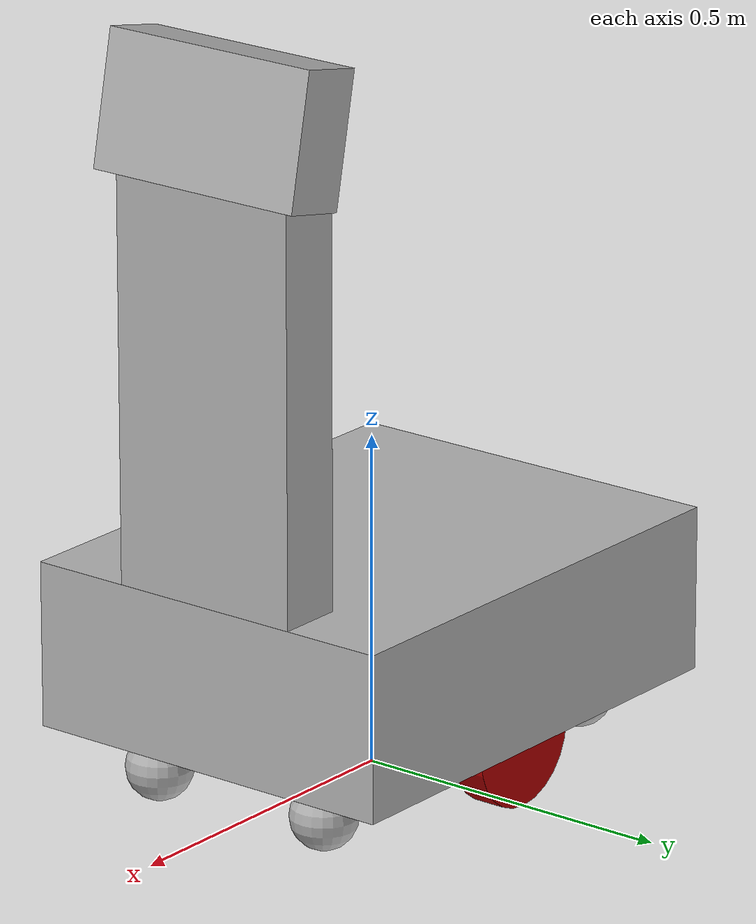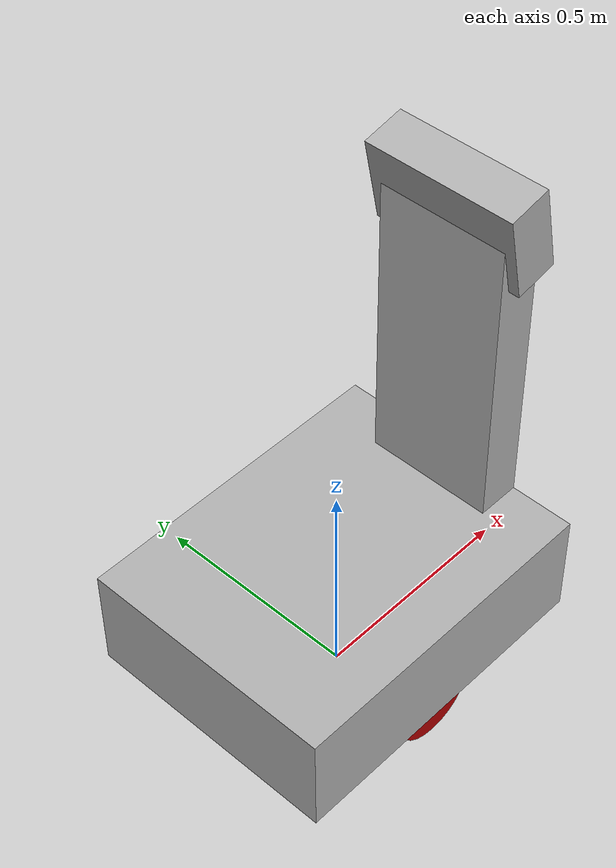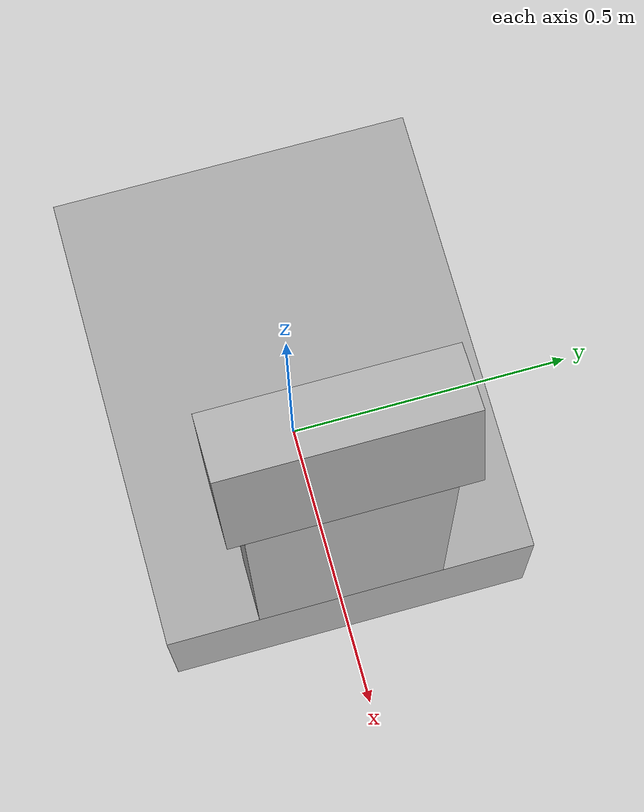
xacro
<?xml version = "1.0"?>

<robot xmlns:xacro="http://www.ros.org/wiki/xacro" name="fielder">

<xacro:include filename="fielder.xacro" />
<xacro:include filename="gazebo_visual.xacro" />
<xacro:include filename="gazebo_control.xacro" />
<xacro:include filename="gazebo_lidar.xacro" />
<xacro:include filename="fielder_chasis.xacro"/>

</robot>

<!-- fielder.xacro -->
<robot xmlns:xacro="http://www.ros.org/wiki/xacro" name="fielder">
    <material name="grey">
        <color rgba="0.7 0.7 0.7 1" />
    </material>

    <material name="green">
        <color rgba="0 0.7 0 1" />
    </material>

    <material name="red">
        <color rgba="0.7 0 0 1" />
    </material>

    <link name="base_footprint" />

    <link name="base_link">
        <visual>
            <geometry>
                <box size="0.74 0.5 0.16" />
            </geometry>
            <origin xyz="0 0 0.08" rpy="0 0 0" />
            <material name="green" />
        </visual>

        <collision>
            <geometry>
                <box size="0.84 0.6 0.3" />
            </geometry>
            <origin xyz="0 0 0.08" rpy="0 0 0" />
            <material name="red" />
        </collision>

        <inertial>
            <mass value="90" />
            <inertia
            ixx="2.067" ixy="0" ixz="0"
            iyy="4.299" iyz="0"
            izz="5.982" />
            <origin xyz="0 0 0.08" rpy="0 0 0" />
        </inertial>
    </link>

    <link name="lidar_link">
        <visual>
            <geometry>
                <cylinder radius="0.05" length="0.08" />
            </geometry>
            <origin xyz="0 0 0" rpy="0 0 0" />
            <material name="grey" />
        </visual>
    </link>

    <link name="left_wheel_link">
        <visual>
            <geometry>
                <cylinder radius="0.1" length="0.05" />
            </geometry>
            <origin xyz="0 0 0" rpy="1.57 0 0" />
            <material name="red" />
        </visual>

        <collision>
            <geometry>
                <cylinder radius="0.1" length="0.05" />
            </geometry>
            <origin xyz="0 0 0" rpy="1.57 0 0" />
        </collision>
        <!-- inertial for left tyre (solid-cylinder approximation)
             r = 0.1 m, h = 0.05 m, mass ~1.5 kg -->
        <inertial>
            <mass value="1.5" />
            <!-- I_perp = (1/12) * m * (3*r^2 + h^2) = 0.0040625
                 I_axis = 0.5 * m * r^2 = 0.0075 -->
            <inertia ixx="0.0040625" ixy="0" ixz="0" iyy="0.0075" iyz="0" izz="0.0040625" />
            <origin xyz="0 0 0" rpy="0 0 0" />
        </inertial>
    </link>

    <link name="right_wheel_link">
        <visual>
            <geometry>
                <cylinder radius="0.1" length="0.05" />
            </geometry>
            <origin xyz="0 0 0" rpy="1.57 0 0" />
            <material name="red" />
        </visual>

        <collision>
            <geometry>
                <cylinder radius="0.1" length="0.05" />
            </geometry>
            <origin xyz="0 0 0" rpy="1.57 0 0" />
        </collision>
        <!-- inertial for right tyre (same values as left) -->
        <inertial>
            <mass value="1.5" />
            <inertia ixx="0.0040625" ixy="0" ixz="0" iyy="0.0075" iyz="0" izz="0.0040625" />
            <origin xyz="0 0 0" rpy="0 0 0" />
        </inertial>
    </link>

    <link name="castor_wheel_front_right">
        <visual>
            <geometry>
                <sphere radius="0.05" />
            </geometry>
            <origin xyz="0 0 0" rpy="0 0 0" />
            <material name="grey" />
        </visual>

        <collision>
            <geometry>
                <sphere radius="0.05" />
            </geometry>
            <origin xyz="0 0 0" rpy="0 0 0" />
        </collision>
    </link>

    <link name="castor_wheel_front_left">
        <visual>
            <geometry>
                <sphere radius="0.05" />
            </geometry>
            <origin xyz="0 0 0" rpy="0 0 0" />
            <material name="grey" />
        </visual>

        <collision>
            <geometry>
                <sphere radius="0.05" />
            </geometry>
            <origin xyz="0 0 0" rpy="0 0 0" />
        </collision>
    </link>

    <link name="castor_wheel_rear_right">
        <visual>
            <geometry>
                <sphere radius="0.05" />
            </geometry>
            <origin xyz="0 0 0" rpy="0 0 0" />
            <material name="grey" />
        </visual>

        <collision>
            <geometry>
                <sphere radius="0.05" />
            </geometry>
            <origin xyz="0 0 0" rpy="0 0 0" />
        </collision>
    </link>

    <link name="castor_wheel_rear_left">
        <visual>
            <geometry>
                <sphere radius="0.05" />
            </geometry>
            <origin xyz="0 0 0" rpy="0 0 0" />
            <material name="grey" />
        </visual>

        <collision>
            <geometry>
                <sphere radius="0.05" />
            </geometry>
            <origin xyz="0 0 0" rpy="0 0 0" />
        </collision>
    </link>

    <joint name="base_joint" type="fixed" >
        <parent link="base_footprint" />
        <child link="base_link" />
        <origin xyz="0 0 0.1" rpy="0 0 0" />
    </joint>

    <joint name="base_lidar_joint" type="fixed" >
        <parent link="base_link" />
        <child link="lidar_link" />
        <origin xyz="0 0 0.16" rpy="0 0 0" />
    </joint>

    <joint name="base_left_wheel_joint" type="continuous" >
        <parent link="base_link" />
        <child link="left_wheel_link" />
        <origin xyz="0 0.25 0" rpy="0 0 0" />
        <axis xyz="0 1 0" />
    </joint>

    <joint name="base_right_wheel_joint" type="continuous" >
        <parent link="base_link" />
        <child link="right_wheel_link" />
        <origin xyz="0 -0.25 0" rpy="0 0 0" />
        <axis xyz="0 1 0" />
    </joint>

    <joint name="base_castor_wheel_front_right" type="fixed">
        <parent link="base_link" />
        <child link="castor_wheel_front_right" />
        <origin xyz="0.3 -0.15 -0.05" rpy="0 0 0" />
    </joint>

    <joint name="base_castor_wheel_front_left" type="fixed">
        <parent link="base_link" />
        <child link="castor_wheel_front_left" />
        <origin xyz="0.3 0.15 -0.05" rpy="0 0 0" />
    </joint>

    <joint name="base_castor_wheel_rear_right" type="fixed">
        <parent link="base_link" />
        <child link="castor_wheel_rear_right" />
        <origin xyz="-0.3 -0.15 -0.05" rpy="0 0 0" />
    </joint>

    <joint name="base_castor_wheel_rear_left" type="fixed">
        <parent link="base_link" />
        <child link="castor_wheel_rear_left" />
        <origin xyz="-0.3 0.15 -0.05" rpy="0 0 0" />
    </joint>

</robot>

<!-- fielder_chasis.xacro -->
<robot xmlns:xacro="http://www.ros.org/wiki/xacro" name="chassis">

    <link name="chasis_bottom">
        <visual>
            <geometry>
                <box size="0.76 0.6 0.25" />
            </geometry>
            <material name="grey">
                <color rgba="0.7 0.7 0.7 1" />
            </material>
            <origin xyz="0 0 0.125" rpy="0 0 0" />
        </visual>
        <collision>
            <geometry>
                <box size="0.76 0.6 0.25" />
            </geometry>
            <origin xyz="0 0 0.125" rpy="0 0 0" />
        </collision>
        <inertial>
            <mass value="0.1" />
            <inertia ixx="0.001" iyy="0.001" izz="0.001" ixy="0" ixz="0" iyz="0" />
            <origin xyz="0 0 0.125" rpy="0 0 0" />
        </inertial>
    </link>

    <link name="chasis_middle">
        <visual>
            <geometry>
                <box size="0.1 0.3 0.7" />
            </geometry>
            <origin xyz="0 0 0.35" rpy="0 0 0" />
            <material name="grey">
                <color rgba="0.7 0.7 0.7 1" />
            </material>
        </visual>

        <collision>
            <geometry>
                <box size="0.1 0.3 0.7" />
            </geometry>
            <origin xyz="0 0 0.35" rpy="0 0 0" />
        </collision>
        <inertial>
            <mass value="0.1" />
            <inertia ixx="0.001" iyy="0.001" izz="0.001" ixy="0" ixz="0" iyz="0" />
            <origin xyz="0 0 0.35" rpy="0 0 0" />
        </inertial>
    </link>

    <link name = "screen">
        <visual>
            <geometry>
                <box size="0.1 0.35 0.2" />
            </geometry>
            <origin xyz="0 0 0 " rpy="0 -0.2 0" />
            <material name="grey">
                <color rgba="0.7 0.7 0.7 1" />
            </material>
        </visual>
        <collision>
            <geometry>
                <box size="0.1 0.35 0.2" />
            </geometry>
            <origin xyz="0 0 0 " rpy="0 -0.2 0" />
        </collision>
        <inertial>
            <mass value="0.1" />
            <inertia ixx="0.001" iyy="0.001" izz="0.001" ixy="0" ixz="0" iyz="0" />
            <origin xyz="0 0 0 " rpy="0 -0.2 0" />
        </inertial>
    </link>

    <joint name="chassis_joint" type="fixed">
        <parent link="base_link"/>
        <child link="chasis_bottom"/>
        <origin xyz="0 0 0.0" rpy="0 0 0" />
        <axis xyz="0 0 0" />
    </joint>

    <joint name="chassis_middle_joint" type="fixed">
        <parent link="chasis_bottom"/>
        <child link="chasis_middle"/>
        <origin xyz="0.33 0 0.25" rpy="0 0 0" />
        <axis xyz="0 0 0" />
    </joint>

    <joint name="screen_joint" type="fixed">
        <parent link="chasis_middle"/>
        <child link="screen"/>
        <origin xyz="0 0 0.7" rpy="0 0 0" />
        <axis xyz="0 0 0" />
    </joint>

    </robot>
